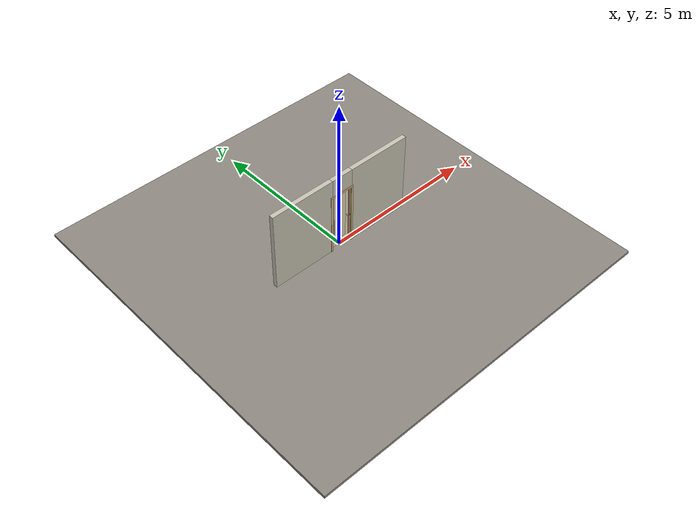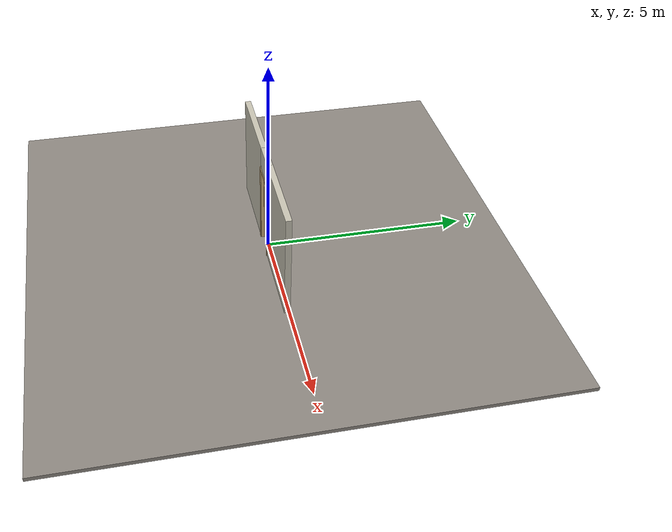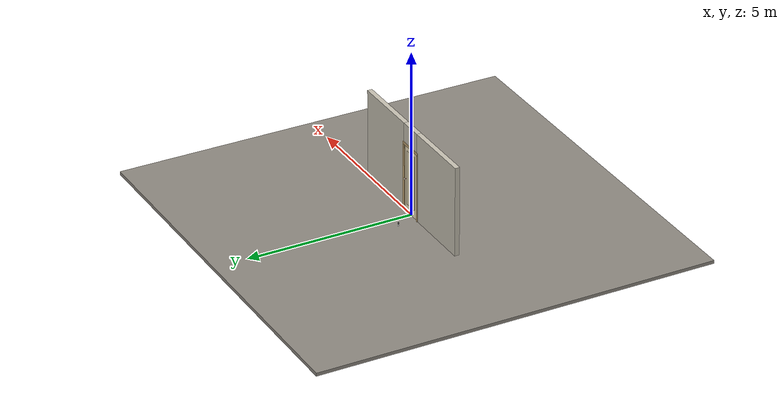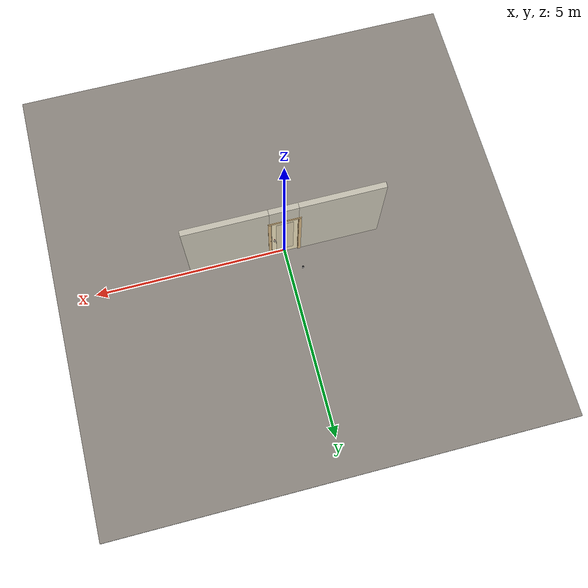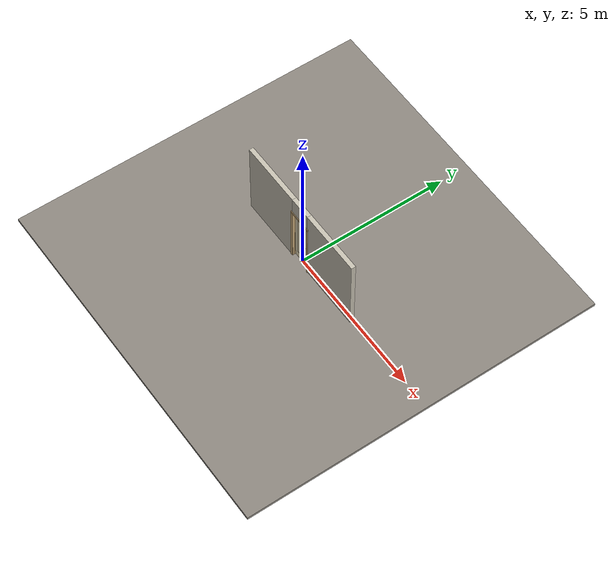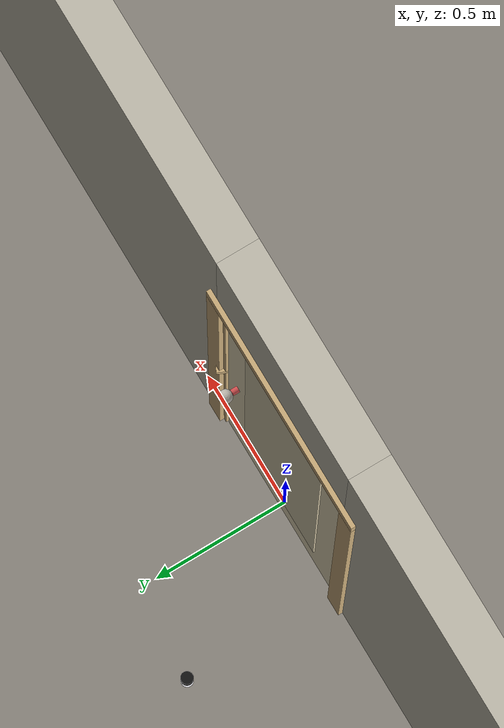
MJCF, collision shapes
<?xml version="1.0" ?>
<mujoco model="db0782_swing_single_full">
  <compiler angle="radian" meshdir="../../hardware" texturedir="../../textures" autolimits="true" inertiafromgeom="false"/>
  <option timestep="0.002" integrator="implicitfast" cone="elliptic" impratio="10" noslip_iterations="3">
    <flag multiccd="enable"/>
  </option>
  <size memory="16M"/>
  <default>
    <geom condim="4" solref="0.005 1" solimp="0.95 0.99 0.001"/>
    <joint solreflimit="0.005 1" solimplimit="0.95 0.99 0.001"/>
    <tendon solreflimit="0.005 1"/>
    <equality solref="0.002 1"/>
  </default>
  <visual>
    <headlight ambient="0.4 0.4 0.4" diffuse="0.7 0.7 0.7" specular="0.2 0.2 0.2"/>
    <quality shadowsize="4096"/>
    <map znear="0.01" zfar="60"/>
  </visual>
  <asset>
    <mesh name="hinge_e53abd72ad" file="hinge_e53abd72ad.obj"/>
    <mesh name="hinge_jamb_c17a76d68c" file="hinge_jamb_c17a76d68c.obj"/>
    <mesh name="knob_248d825e64" file="knob_248d825e64.obj"/>
    <mesh name="knob_d1888f6f03" file="knob_d1888f6f03.obj"/>
    <material name="mat_floor" rgba="0.55 0.53 0.5 1" specular="0.2" shininess="0.15" reflectance="0"/>
    <material name="mat_wall" rgba="0.78 0.76 0.7 1" specular="0.2" shininess="0.1" reflectance="0"/>
    <material name="mat_leaf" rgba="0.93 0.88 0.74 1" specular="0.2" shininess="0.39" reflectance="0"/>
    <material name="mat_leaf_panel" rgba="0.856 0.81 0.681 1" specular="0.2" shininess="0.39" reflectance="0"/>
    <material name="mat_hinge" rgba="0.65 0.66 0.68 1" specular="0.74" shininess="0.5" reflectance="0.36"/>
    <material name="mat_op_nickel_satin" rgba="0.72 0.7 0.66 1" specular="0.8" shininess="0.65" reflectance="0.4"/>
    <material name="mat_trim" rgba="0.85 0.66 0.3 1" specular="0.8" shininess="0.75" reflectance="0.4"/>
    <material name="mat_bolt" rgba="0.85 0.66 0.3 1" specular="0.8" shininess="0.75" reflectance="0.4"/>
    <material name="mat_frame" rgba="0.82 0.7 0.5 1" specular="0.2" shininess="0.45" reflectance="0"/>
    <material name="mat_bumper_stop" rgba="0.08 0.08 0.08 1" specular="0.2" shininess="0.1" reflectance="0"/>
    <material name="mat_stop_base" rgba="0.9 0.9 0.92 1" specular="0.8" shininess="0.9" reflectance="0.4"/>
    <texture name="skybox" type="skybox" builtin="gradient" rgb1="0.6 0.7 0.85" rgb2="0.9 0.92 0.95" width="256" height="256"/>
  </asset>
  <worldbody>
    <light name="sun" pos="1.5 -2.5 4" dir="-0.3 0.5 -0.8" directional="true" diffuse="0.8 0.8 0.8" specular="0.3 0.3 0.3" castshadow="true"/>
    <light name="fill" pos="-1.5 2.5 3" dir="0.3 -0.5 -0.7" directional="true" diffuse="0.35 0.35 0.4" castshadow="false"/>
    <camera name="robot_view" pos="0 -2.587687 1.734312" xyaxes="1 0 0 0 0.26963 0.962964" fovy="52"/>
    <camera name="far_view" pos="0 2.496687 1.734312" xyaxes="-1 0 0 0 -0.26963 0.962964" fovy="52"/>
    <camera name="iso" pos="1.932062 -2.180938 2.141063" xyaxes="0.741536 0.670913 0 -0.242917 0.268487 0.932151" fovy="46"/>
    <camera name="detail_handle" pos="0.449 -0.8665 1.296" xyaxes="0.97561 0.219512 0 -0.070934 0.315262 0.94635" fovy="38"/>
    <geom name="floor" type="box" size="6 6 0.05" pos="0 0 -0.05" material="mat_floor" group="0" contype="1" conaffinity="1" friction="0.8 0.005 0.0001" density="2400"/>
    <geom name="wall_left" type="box" size="1.0735 0.0725 1.35" pos="-1.4265 -0.0455 1.35" material="mat_wall" group="0" contype="1" conaffinity="1" friction="0.6 0.005 0.0001" density="800"/>
    <geom name="wall_right" type="box" size="1.0585 0.0725 1.35" pos="1.4415 -0.0455 1.35" material="mat_wall" group="0" contype="1" conaffinity="1" friction="0.6 0.005 0.0001" density="800"/>
    <geom name="wall_header" type="box" size="0.368 0.0725 0.303" pos="0.015 -0.0455 2.397" material="mat_wall" group="0" contype="1" conaffinity="1" friction="0.6 0.005 0.0001" density="800"/>
    <geom name="hinge_0_jamb" type="mesh" mesh="hinge_jamb_c17a76d68c" pos="-0.331 0.027 0.259" quat="0 1 0 0" material="mat_hinge" group="1" contype="0" conaffinity="0" density="7850"/>
    <geom name="hinge_1_jamb" type="mesh" mesh="hinge_jamb_c17a76d68c" pos="-0.331 0.027 1.025" quat="0 1 0 0" material="mat_hinge" group="1" contype="0" conaffinity="0" density="7850"/>
    <geom name="hinge_2_jamb" type="mesh" mesh="hinge_jamb_c17a76d68c" pos="-0.331 0.027 1.861" quat="0 1 0 0" material="mat_hinge" group="1" contype="0" conaffinity="0" density="7850"/>
    <geom name="jamb_hinge" type="box" size="0.0095 0.0725 1.0225" pos="-0.3435 -0.0455 1.0225" material="mat_frame" group="0" contype="1" conaffinity="1" friction="0.6 0.005 0.0001" density="400"/>
    <geom name="strike_1016_wall_n" type="box" size="0.0245 0.055075 0.0167" pos="0.3585 -0.062925 1.016" material="mat_frame" group="0" contype="1" conaffinity="1" friction="0.6 0.005 0.0001" density="400"/>
    <geom name="strike_1016_wall_p" type="box" size="0.0245 0.008 0.0167" pos="0.3585 0.01585 1.016" material="mat_frame" group="0" contype="1" conaffinity="1" friction="0.6 0.005 0.0001" density="400"/>
    <geom name="strike_1016_ramp" type="box" size="0.0245 0.01649 0.0167" pos="0.363136 0.028673 1.016" quat="0.977148 0 0 -0.212558" material="mat_frame" group="0" contype="1" conaffinity="1" friction="0.12 0.005 0.0001" density="400"/>
    <geom name="strike_1016_back" type="box" size="0.01615 0.00785 0.0167" pos="0.36685 0 1.016" material="mat_frame" group="0" contype="1" conaffinity="1" friction="0.6 0.005 0.0001" density="400"/>
    <geom name="jamb_strike_0" type="box" size="0.0245 0.0725 0.49965" pos="0.3585 -0.0455 0.49965" material="mat_frame" group="0" contype="1" conaffinity="1" friction="0.6 0.005 0.0001" density="400"/>
    <geom name="jamb_strike_1" type="box" size="0.0245 0.0725 0.50615" pos="0.3585 -0.0455 1.53885" material="mat_frame" group="0" contype="1" conaffinity="1" friction="0.6 0.005 0.0001" density="400"/>
    <geom name="jamb_head" type="box" size="0.368 0.0725 0.0095" pos="0.015 -0.0455 2.0545" material="mat_frame" group="0" contype="1" conaffinity="1" friction="0.6 0.005 0.0001" density="400"/>
    <geom name="head_stud" type="box" size="0.368 0.0725 0.015" pos="0.015 -0.0455 2.079" material="mat_wall" group="0" contype="1" conaffinity="1" friction="0.6 0.005 0.0001" density="500"/>
    <geom name="stop_hinge" type="box" size="0.0055 0.016 1.0225" pos="-0.3285 -0.0365 1.0225" material="mat_frame" group="0" contype="1" conaffinity="1" friction="0.6 0.005 0.0001" density="400"/>
    <geom name="stop_strike" type="box" size="0.0055 0.016 1.0225" pos="0.3285 -0.0365 1.0225" material="mat_frame" group="0" contype="1" conaffinity="1" friction="0.6 0.005 0.0001" density="400"/>
    <geom name="stop_head" type="box" size="0.334 0.016 0.0055" pos="0 -0.0365 2.0395" material="mat_frame" group="0" contype="1" conaffinity="1" friction="0.6 0.005 0.0001" density="400"/>
    <geom name="casing_l_n" type="box" size="0.035 0.008 1.032" pos="-0.383 -0.126 1.0225" material="mat_frame" group="2" contype="0" conaffinity="0" density="400"/>
    <geom name="casing_r_n" type="box" size="0.035 0.008 1.032" pos="0.383 -0.126 1.0225" material="mat_frame" group="2" contype="0" conaffinity="0" density="400"/>
    <geom name="casing_h_n" type="box" size="0.418 0.008 0.035" pos="0 -0.126 2.094" material="mat_frame" group="2" contype="0" conaffinity="0" density="400"/>
    <geom name="casing_l_p" type="box" size="0.035 0.008 1.032" pos="-0.383 0.035 1.0225" material="mat_frame" group="2" contype="0" conaffinity="0" density="400"/>
    <geom name="casing_r_p" type="box" size="0.035 0.008 1.032" pos="0.383 0.035 1.0225" material="mat_frame" group="2" contype="0" conaffinity="0" density="400"/>
    <geom name="casing_h_p" type="box" size="0.418 0.008 0.035" pos="0 0.035 2.094" material="mat_frame" group="2" contype="0" conaffinity="0" density="400"/>
    <geom name="door_stop_base" type="cylinder" size="0.022 0.003" pos="-0.347 0.588 0.003" material="mat_stop_base" group="0" contype="1" conaffinity="1" friction="0.6 0.005 0.0001" density="7850"/>
    <geom name="door_stop_post" type="cylinder" size="0.012 0.0245" pos="-0.347 0.588 0.0305" material="mat_stop_base" group="0" contype="1" conaffinity="1" friction="0.6 0.005 0.0001" density="7850"/>
    <geom name="door_stop_bumper" type="cylinder" size="0.022 0.02" pos="-0.347 0.588 0.075" material="mat_bumper_stop" group="0" contype="1" conaffinity="1" friction="0.6 0.005 0.0001" density="1100"/>
    <site name="approach_point" pos="0 -1.5 0" quat="1 0 0 0" size="0.05" rgba="0.2 0.9 0.2 0.5" group="4"/>
    <site name="goal_point" pos="0 1.5 0" quat="1 0 0 0" size="0.05" rgba="0.2 0.9 0.2 0.5" group="4"/>
    <site name="door_plane_center" pos="0 0 1.0225" quat="1 0 0 0" size="0.02" rgba="0.2 0.9 0.2 0.5" group="4"/>
    <body name="leaf" pos="-0.334 0 0">
      <inertial pos="0.329539 0.000163 1.025262" mass="40.38108" quat="0.500296 0.499568 -0.500426 0.499709" diaginertia="1.503507037 13.931594698 15.4240688"/>
      <joint name="leaf_hinge" type="hinge" axis="0 0 1" pos="0.003 0.027 0" limited="true" range="0 1.570796" damping="0.119633" frictionloss="1.00037" armature="0.02"/>
      <geom name="leaf_slab" type="box" size="0.33 0.02 1.016" pos="0.333 0 1.025" material="mat_leaf" group="0" contype="1" conaffinity="1" friction="0.4 0.005 0.0001" density="1"/>
      <geom name="leaf_panel_0_n" type="box" size="0.22 0.003 0.83344" pos="0.333 -0.023 1.08596" material="mat_leaf_panel" group="1" contype="0" conaffinity="0" density="1"/>
      <geom name="leaf_panel_0_p" type="box" size="0.22 0.003 0.83344" pos="0.333 0.023 1.08596" material="mat_leaf_panel" group="1" contype="0" conaffinity="0" density="1"/>
      <geom name="hinge_0" type="mesh" mesh="hinge_e53abd72ad" pos="0.003 0.027 0.259" quat="0 1 0 0" material="mat_hinge" group="1" contype="0" conaffinity="0" density="7850"/>
      <geom name="hinge_1" type="mesh" mesh="hinge_e53abd72ad" pos="0.003 0.027 1.025" quat="0 1 0 0" material="mat_hinge" group="1" contype="0" conaffinity="0" density="7850"/>
      <geom name="hinge_2" type="mesh" mesh="hinge_e53abd72ad" pos="0.003 0.027 1.861" quat="0 1 0 0" material="mat_hinge" group="1" contype="0" conaffinity="0" density="7850"/>
      <geom name="leaf_latch_bolt_faceplate" type="box" size="0.0006 0.01235 0.0267" pos="0.6624 0 1.016" material="mat_bolt" group="1" contype="0" conaffinity="0" density="8500"/>
      <site name="leaf_edge_mid" pos="0.663 0 1.016" quat="1 0 0 0" size="0.02" rgba="0.2 0.9 0.2 0.5" group="4"/>
      <body name="leaf_handle" pos="0.603 0 1.016">
        <inertial pos="0 0.000221 0" mass="1.1511" quat="0.5 0.5 0.5 0.5" diaginertia="0.000312482 0.004034625 0.004034625"/>
        <joint name="leaf_handle_hinge" type="hinge" axis="0 -1 0" limited="true" range="0 0.09" damping="0.143614" frictionloss="0.038" stiffness="0.5" springref="-0.5" armature="0.01"/>
        <geom name="leaf_handle_spindle" type="cylinder" size="0.006 0.028" pos="0 0 0" quat="0.707107 -0.707107 0 0" material="mat_op_nickel_satin" group="1" contype="0" conaffinity="0" density="7850"/>
        <geom name="leaf_handle_knob_n" type="mesh" mesh="knob_d1888f6f03" pos="0 -0.02 0" quat="0.707107 0.707107 0 0" material="mat_op_nickel_satin" group="1" contype="0" conaffinity="0" density="3000"/>
        <geom name="leaf_handle_knob_col_n" type="sphere" size="0.0243" pos="0 -0.0665 0" material="mat_op_nickel_satin" group="0" contype="1" conaffinity="1" friction="0.9 0.01 0.0001" density="3000"/>
        <geom name="leaf_handle_knob_neck_n" type="cylinder" size="0.011 0.012" pos="0 -0.032 0" quat="0.707107 -0.707107 0 0" material="mat_op_nickel_satin" group="3" contype="1" conaffinity="1" rgba="0.8 0.3 0.3 0.25" friction="0.6 0.005 0.0001" density="3000"/>
        <geom name="leaf_handle_knob_p" type="mesh" mesh="knob_248d825e64" pos="0 0.02 0" quat="-0.707107 0.707107 0 0" material="mat_op_nickel_satin" group="1" contype="0" conaffinity="0" density="3000"/>
        <geom name="leaf_handle_knob_col_p" type="sphere" size="0.0243" pos="0 0.0665 0" material="mat_op_nickel_satin" group="0" contype="1" conaffinity="1" friction="0.9 0.01 0.0001" density="3000"/>
        <geom name="leaf_handle_knob_neck_p" type="cylinder" size="0.011 0.012" pos="0 0.032 0" quat="0.707107 -0.707107 0 0" material="mat_op_nickel_satin" group="3" contype="1" conaffinity="1" rgba="0.8 0.3 0.3 0.25" friction="0.6 0.005 0.0001" density="3000"/>
        <site name="leaf_handle_grip_n" pos="0 -0.0665 0" quat="1 0 0 0" size="0.012" rgba="0.2 0.9 0.2 0.5" group="4"/>
        <site name="leaf_handle_grip_p" pos="0 0.0665 0" quat="1 0 0 0" size="0.012" rgba="0.2 0.9 0.2 0.5" group="4"/>
      </body>
      <body name="leaf_latch_bolt" pos="0.663 0 1.016">
        <inertial pos="-0.00865 0 0" mass="0.041419" quat="0.92388 -0.382683 0 0" diaginertia="0.000000798 0.000005598 0.000005598"/>
        <joint name="leaf_latch_bolt_slide" type="slide" axis="-1 0 0" limited="true" range="0 0.0127" damping="2" frictionloss="0.3" stiffness="300" springref="-0.008333" armature="0.1"/>
        <geom name="leaf_latch_bolt_capsule" type="capsule" size="0.00635 0.015" pos="-0.00865 0 0" quat="0.707107 0 0.707107 0" material="mat_bolt" group="0" contype="1" conaffinity="1" friction="0.2 0.005 0.0001" density="8500"/>
      </body>
    </body>
  </worldbody>
  <tendon>
    <fixed name="leaf_latch_bolt_coupling" limited="true" range="0 10">
      <joint joint="leaf_latch_bolt_slide" coef="1"/>
      <joint joint="leaf_handle_hinge" coef="-0.015679"/>
    </fixed>
  </tendon>
  <sensor>
    <jointpos name="leaf_hinge_pos" joint="leaf_hinge"/>
    <jointvel name="leaf_hinge_vel" joint="leaf_hinge"/>
    <jointpos name="leaf_handle_hinge_pos" joint="leaf_handle_hinge"/>
    <jointvel name="leaf_handle_hinge_vel" joint="leaf_handle_hinge"/>
    <jointpos name="leaf_latch_bolt_slide_pos" joint="leaf_latch_bolt_slide"/>
    <jointvel name="leaf_latch_bolt_slide_vel" joint="leaf_latch_bolt_slide"/>
  </sensor>
</mujoco>
